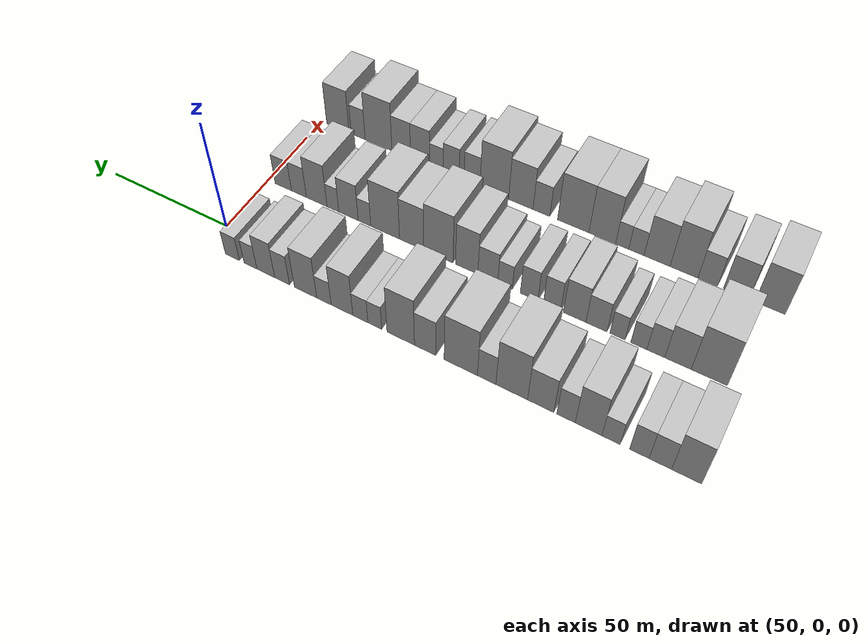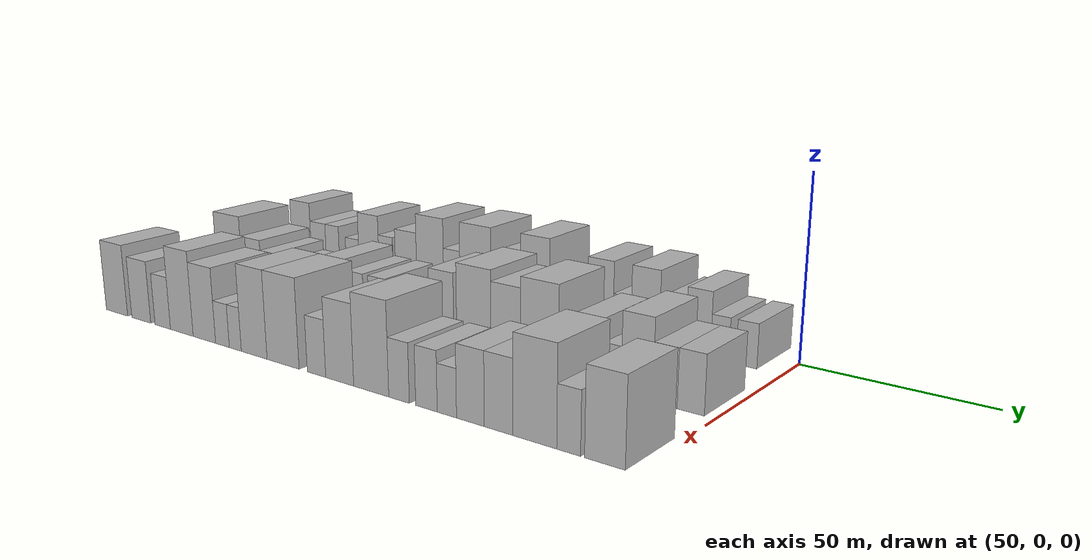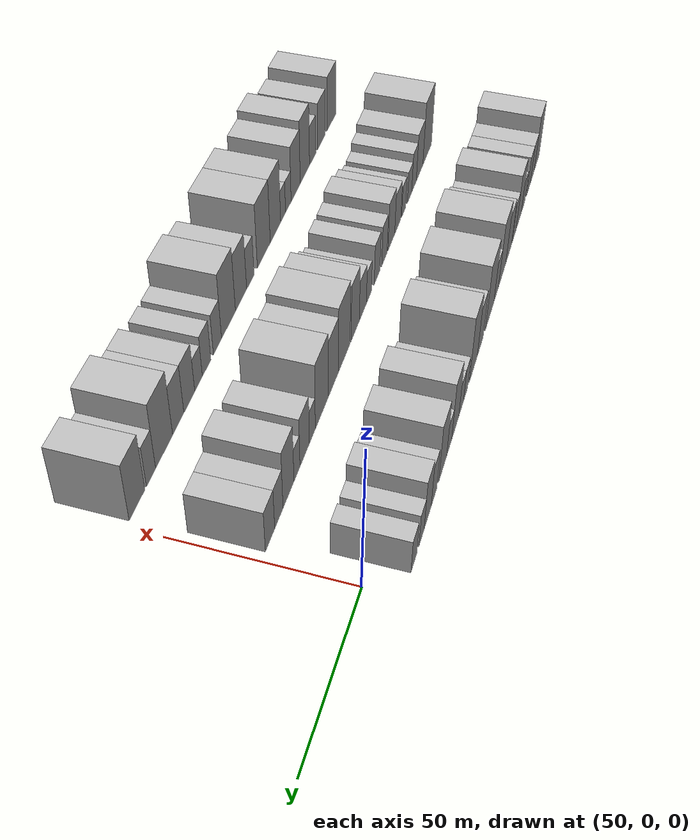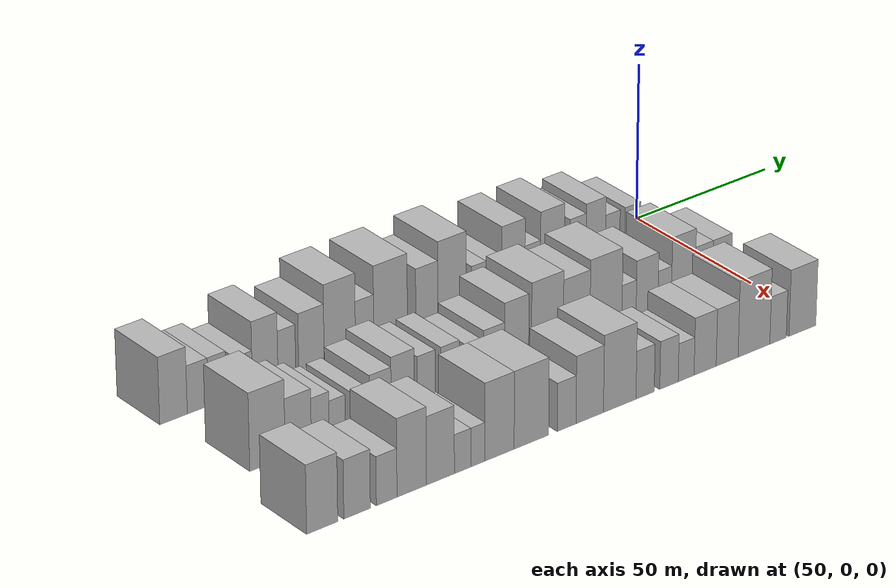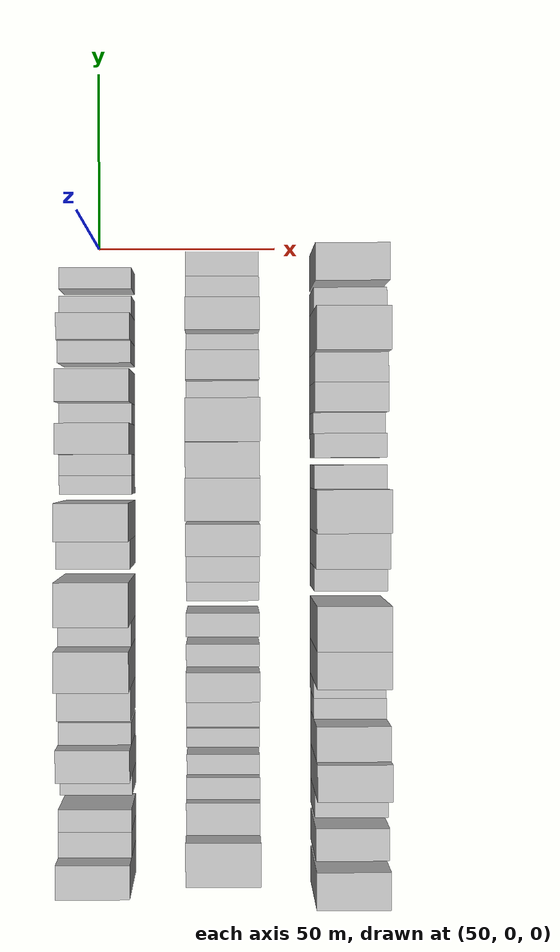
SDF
<sdf version="1.6">
 <world name="default">
  <model name="building_22">
   <static>1</static>
   <pose>50.0000 -173.2821 0 0.000000 0.000000 0.000000</pose>
   <link name="link">
    <pose>0 0 10.50 0 0 0</pose>
    <collision name="collision"><geometry><box><size>20.0000 9.2042 21.0000</size></box></geometry></collision>
    <visual name="visual">
     <cast_shadows>0</cast_shadows>
     <geometry><box><size>20.0000 9.2042 21.0000</size></box></geometry>
     <material>
      <script>
       <uri>model://HANNAS_wall/materials/scripts</uri>
       <uri>model://HANNAS_wall/materials/textures</uri>
       <name>vrc/HANNAS_wall</name>
      </script>
     </material>
    </visual>
   </link>
  </model>
  <model name="building_23">
   <static>1</static>
   <pose>50.0000 -165.1780 0 0.000000 0.000000 0.000000</pose>
   <link name="link">
    <pose>0 0 7.50 0 0 0</pose>
    <collision name="collision"><geometry><box><size>20.0000 7.0040 15.0000</size></box></geometry></collision>
    <visual name="visual">
     <cast_shadows>0</cast_shadows>
     <geometry><box><size>20.0000 7.0040 15.0000</size></box></geometry>
     <material>
      <script>
       <uri>model://HANNAS_wall/materials/scripts</uri>
       <uri>model://HANNAS_wall/materials/textures</uri>
       <name>vrc/HANNAS_wall</name>
      </script>
     </material>
    </visual>
   </link>
  </model>
  <model name="building_24">
   <static>1</static>
   <pose>50.0000 -158.6094 0 0.000000 0.000000 0.000000</pose>
   <link name="link">
    <pose>0 0 7.50 0 0 0</pose>
    <collision name="collision"><geometry><box><size>20.0000 6.1332 15.0000</size></box></geometry></collision>
    <visual name="visual">
     <cast_shadows>0</cast_shadows>
     <geometry><box><size>20.0000 6.1332 15.0000</size></box></geometry>
     <material>
      <script>
       <uri>model://HANNAS_wall/materials/scripts</uri>
       <uri>model://HANNAS_wall/materials/textures</uri>
       <name>vrc/HANNAS_wall</name>
      </script>
     </material>
    </visual>
   </link>
  </model>
  <model name="building_25">
   <static>1</static>
   <pose>50.0000 -149.6114 0 0.000000 0.000000 0.000000</pose>
   <link name="link">
    <pose>0 0 6.00 0 0 0</pose>
    <collision name="collision"><geometry><box><size>20.0000 5.8628 12.0000</size></box></geometry></collision>
    <visual name="visual">
     <cast_shadows>0</cast_shadows>
     <geometry><box><size>20.0000 5.8628 12.0000</size></box></geometry>
     <material>
      <script>
       <uri>model://HANNAS_wall/materials/scripts</uri>
       <uri>model://HANNAS_wall/materials/textures</uri>
       <name>vrc/HANNAS_wall</name>
      </script>
     </material>
    </visual>
   </link>
  </model>
  <model name="building_26">
   <static>1</static>
   <pose>50.0000 -142.3079 0 0.000000 0.000000 0.000000</pose>
   <link name="link">
    <pose>0 0 10.50 0 0 0</pose>
    <collision name="collision"><geometry><box><size>20.0000 8.7442 21.0000</size></box></geometry></collision>
    <visual name="visual">
     <cast_shadows>0</cast_shadows>
     <geometry><box><size>20.0000 8.7442 21.0000</size></box></geometry>
     <material>
      <script>
       <uri>model://HANNAS_wall/materials/scripts</uri>
       <uri>model://HANNAS_wall/materials/textures</uri>
       <name>vrc/HANNAS_wall</name>
      </script>
     </material>
    </visual>
   </link>
  </model>
  <model name="building_27">
   <static>1</static>
   <pose>50.0000 -134.8896 0 0.000000 0.000000 0.000000</pose>
   <link name="link">
    <pose>0 0 7.50 0 0 0</pose>
    <collision name="collision"><geometry><box><size>20.0000 6.0924 15.0000</size></box></geometry></collision>
    <visual name="visual">
     <cast_shadows>0</cast_shadows>
     <geometry><box><size>20.0000 6.0924 15.0000</size></box></geometry>
     <material>
      <script>
       <uri>model://HANNAS_wall/materials/scripts</uri>
       <uri>model://HANNAS_wall/materials/textures</uri>
       <name>vrc/HANNAS_wall</name>
      </script>
     </material>
    </visual>
   </link>
  </model>
  <model name="building_28">
   <static>1</static>
   <pose>50.0000 -126.4223 0 0.000000 0.000000 0.000000</pose>
   <link name="link">
    <pose>0 0 9.00 0 0 0</pose>
    <collision name="collision"><geometry><box><size>20.0000 8.8422 18.0000</size></box></geometry></collision>
    <visual name="visual">
     <cast_shadows>0</cast_shadows>
     <geometry><box><size>20.0000 8.8422 18.0000</size></box></geometry>
     <material>
      <script>
       <uri>model://HANNAS_wall/materials/scripts</uri>
       <uri>model://HANNAS_wall/materials/textures</uri>
       <name>vrc/HANNAS_wall</name>
      </script>
     </material>
    </visual>
   </link>
  </model>
  <model name="building_29">
   <static>1</static>
   <pose>50.0000 -116.5494 0 0.000000 0.000000 0.000000</pose>
   <link name="link">
    <pose>0 0 12.00 0 0 0</pose>
    <collision name="collision"><geometry><box><size>20.0000 10.9035 24.0000</size></box></geometry></collision>
    <visual name="visual">
     <cast_shadows>0</cast_shadows>
     <geometry><box><size>20.0000 10.9035 24.0000</size></box></geometry>
     <material>
      <script>
       <uri>model://HANNAS_wall/materials/scripts</uri>
       <uri>model://HANNAS_wall/materials/textures</uri>
       <name>vrc/HANNAS_wall</name>
      </script>
     </material>
    </visual>
   </link>
  </model>
  <model name="building_30">
   <static>1</static>
   <pose>50.0000 -107.8798 0 0.000000 0.000000 0.000000</pose>
   <link name="link">
    <pose>0 0 7.50 0 0 0</pose>
    <collision name="collision"><geometry><box><size>20.0000 6.4356 15.0000</size></box></geometry></collision>
    <visual name="visual">
     <cast_shadows>0</cast_shadows>
     <geometry><box><size>20.0000 6.4356 15.0000</size></box></geometry>
     <material>
      <script>
       <uri>model://HANNAS_wall/materials/scripts</uri>
       <uri>model://HANNAS_wall/materials/textures</uri>
       <name>vrc/HANNAS_wall</name>
      </script>
     </material>
    </visual>
   </link>
  </model>
  <model name="building_31">
   <static>1</static>
   <pose>50.0000 -98.7202 0 0.000000 0.000000 0.000000</pose>
   <link name="link">
    <pose>0 0 12.00 0 0 0</pose>
    <collision name="collision"><geometry><box><size>20.0000 11.8837 24.0000</size></box></geometry></collision>
    <visual name="visual">
     <cast_shadows>0</cast_shadows>
     <geometry><box><size>20.0000 11.8837 24.0000</size></box></geometry>
     <material>
      <script>
       <uri>model://HANNAS_wall/materials/scripts</uri>
       <uri>model://HANNAS_wall/materials/textures</uri>
       <name>vrc/HANNAS_wall</name>
      </script>
     </material>
    </visual>
   </link>
  </model>
  <model name="building_32">
   <static>1</static>
   <pose>50.0000 -85.8692 0 0.000000 0.000000 0.000000</pose>
   <link name="link">
    <pose>0 0 9.00 0 0 0</pose>
    <collision name="collision"><geometry><box><size>20.0000 7.8184 18.0000</size></box></geometry></collision>
    <visual name="visual">
     <cast_shadows>0</cast_shadows>
     <geometry><box><size>20.0000 7.8184 18.0000</size></box></geometry>
     <material>
      <script>
       <uri>model://HANNAS_wall/materials/scripts</uri>
       <uri>model://HANNAS_wall/materials/textures</uri>
       <name>vrc/HANNAS_wall</name>
      </script>
     </material>
    </visual>
   </link>
  </model>
  <model name="building_33">
   <static>1</static>
   <pose>50.0000 -76.8457 0 0.000000 0.000000 0.000000</pose>
   <link name="link">
    <pose>0 0 12.00 0 0 0</pose>
    <collision name="collision"><geometry><box><size>20.0000 10.2286 24.0000</size></box></geometry></collision>
    <visual name="visual">
     <cast_shadows>0</cast_shadows>
     <geometry><box><size>20.0000 10.2286 24.0000</size></box></geometry>
     <material>
      <script>
       <uri>model://HANNAS_wall/materials/scripts</uri>
       <uri>model://HANNAS_wall/materials/textures</uri>
       <name>vrc/HANNAS_wall</name>
      </script>
     </material>
    </visual>
   </link>
  </model>
  <model name="building_34">
   <static>1</static>
   <pose>50.0000 -67.1187 0 0.000000 0.000000 0.000000</pose>
   <link name="link">
    <pose>0 0 6.00 0 0 0</pose>
    <collision name="collision"><geometry><box><size>20.0000 5.2254 12.0000</size></box></geometry></collision>
    <visual name="visual">
     <cast_shadows>0</cast_shadows>
     <geometry><box><size>20.0000 5.2254 12.0000</size></box></geometry>
     <material>
      <script>
       <uri>model://HANNAS_wall/materials/scripts</uri>
       <uri>model://HANNAS_wall/materials/textures</uri>
       <name>vrc/HANNAS_wall</name>
      </script>
     </material>
    </visual>
   </link>
  </model>
  <model name="building_35">
   <static>1</static>
   <pose>50.0000 -61.6264 0 0.000000 0.000000 0.000000</pose>
   <link name="link">
    <pose>0 0 6.00 0 0 0</pose>
    <collision name="collision"><geometry><box><size>20.0000 5.7592 12.0000</size></box></geometry></collision>
    <visual name="visual">
     <cast_shadows>0</cast_shadows>
     <geometry><box><size>20.0000 5.7592 12.0000</size></box></geometry>
     <material>
      <script>
       <uri>model://HANNAS_wall/materials/scripts</uri>
       <uri>model://HANNAS_wall/materials/textures</uri>
       <name>vrc/HANNAS_wall</name>
      </script>
     </material>
    </visual>
   </link>
  </model>
  <model name="building_36">
   <static>1</static>
   <pose>50.0000 -54.5403 0 0.000000 0.000000 0.000000</pose>
   <link name="link">
    <pose>0 0 10.50 0 0 0</pose>
    <collision name="collision"><geometry><box><size>20.0000 8.4130 21.0000</size></box></geometry></collision>
    <visual name="visual">
     <cast_shadows>0</cast_shadows>
     <geometry><box><size>20.0000 8.4130 21.0000</size></box></geometry>
     <material>
      <script>
       <uri>model://HANNAS_wall/materials/scripts</uri>
       <uri>model://HANNAS_wall/materials/textures</uri>
       <name>vrc/HANNAS_wall</name>
      </script>
     </material>
    </visual>
   </link>
  </model>
  <model name="building_37">
   <static>1</static>
   <pose>50.0000 -47.4788 0 0.000000 0.000000 0.000000</pose>
   <link name="link">
    <pose>0 0 6.00 0 0 0</pose>
    <collision name="collision"><geometry><box><size>20.0000 5.7098 12.0000</size></box></geometry></collision>
    <visual name="visual">
     <cast_shadows>0</cast_shadows>
     <geometry><box><size>20.0000 5.7098 12.0000</size></box></geometry>
     <material>
      <script>
       <uri>model://HANNAS_wall/materials/scripts</uri>
       <uri>model://HANNAS_wall/materials/textures</uri>
       <name>vrc/HANNAS_wall</name>
      </script>
     </material>
    </visual>
   </link>
  </model>
  <model name="building_38">
   <static>1</static>
   <pose>50.0000 -40.1824 0 0.000000 0.000000 0.000000</pose>
   <link name="link">
    <pose>0 0 10.50 0 0 0</pose>
    <collision name="collision"><geometry><box><size>20.0000 8.8831 21.0000</size></box></geometry></collision>
    <visual name="visual">
     <cast_shadows>0</cast_shadows>
     <geometry><box><size>20.0000 8.8831 21.0000</size></box></geometry>
     <material>
      <script>
       <uri>model://HANNAS_wall/materials/scripts</uri>
       <uri>model://HANNAS_wall/materials/textures</uri>
       <name>vrc/HANNAS_wall</name>
      </script>
     </material>
    </visual>
   </link>
  </model>
  <model name="building_39">
   <static>1</static>
   <pose>50.0000 -30.7308 0 0.000000 0.000000 0.000000</pose>
   <link name="link">
    <pose>0 0 7.50 0 0 0</pose>
    <collision name="collision"><geometry><box><size>20.0000 6.0201 15.0000</size></box></geometry></collision>
    <visual name="visual">
     <cast_shadows>0</cast_shadows>
     <geometry><box><size>20.0000 6.0201 15.0000</size></box></geometry>
     <material>
      <script>
       <uri>model://HANNAS_wall/materials/scripts</uri>
       <uri>model://HANNAS_wall/materials/textures</uri>
       <name>vrc/HANNAS_wall</name>
      </script>
     </material>
    </visual>
   </link>
  </model>
  <model name="building_40">
   <static>1</static>
   <pose>50.0000 -24.0567 0 0.000000 0.000000 0.000000</pose>
   <link name="link">
    <pose>0 0 9.00 0 0 0</pose>
    <collision name="collision"><geometry><box><size>20.0000 7.3281 18.0000</size></box></geometry></collision>
    <visual name="visual">
     <cast_shadows>0</cast_shadows>
     <geometry><box><size>20.0000 7.3281 18.0000</size></box></geometry>
     <material>
      <script>
       <uri>model://HANNAS_wall/materials/scripts</uri>
       <uri>model://HANNAS_wall/materials/textures</uri>
       <name>vrc/HANNAS_wall</name>
      </script>
     </material>
    </visual>
   </link>
  </model>
  <model name="building_41">
   <static>1</static>
   <pose>50.0000 -17.7260 0 0.000000 0.000000 0.000000</pose>
   <link name="link">
    <pose>0 0 6.00 0 0 0</pose>
    <collision name="collision"><geometry><box><size>20.0000 5.3332 12.0000</size></box></geometry></collision>
    <visual name="visual">
     <cast_shadows>0</cast_shadows>
     <geometry><box><size>20.0000 5.3332 12.0000</size></box></geometry>
     <material>
      <script>
       <uri>model://HANNAS_wall/materials/scripts</uri>
       <uri>model://HANNAS_wall/materials/textures</uri>
       <name>vrc/HANNAS_wall</name>
      </script>
     </material>
    </visual>
   </link>
  </model>
  <model name="building_42">
   <static>1</static>
   <pose>50.0000 -10.1235 0 0.000000 0.000000 0.000000</pose>
   <link name="link">
    <pose>0 0 6.00 0 0 0</pose>
    <collision name="collision"><geometry><box><size>20.0000 5.8719 12.0000</size></box></geometry></collision>
    <visual name="visual">
     <cast_shadows>0</cast_shadows>
     <geometry><box><size>20.0000 5.8719 12.0000</size></box></geometry>
     <material>
      <script>
       <uri>model://HANNAS_wall/materials/scripts</uri>
       <uri>model://HANNAS_wall/materials/textures</uri>
       <name>vrc/HANNAS_wall</name>
      </script>
     </material>
    </visual>
   </link>
  </model>
  <model name="building_107">
   <static>1</static>
   <pose>85.0000 -167.5696 0 0.000000 0.000000 0.000000</pose>
   <link name="link">
    <pose>0 0 12.00 0 0 0</pose>
    <collision name="collision"><geometry><box><size>20.0000 11.8075 24.0000</size></box></geometry></collision>
    <visual name="visual">
     <cast_shadows>0</cast_shadows>
     <geometry><box><size>20.0000 11.8075 24.0000</size></box></geometry>
     <material>
      <script>
       <uri>model://HANNAS_wall/materials/scripts</uri>
       <uri>model://HANNAS_wall/materials/textures</uri>
       <name>vrc/HANNAS_wall</name>
      </script>
     </material>
    </visual>
   </link>
  </model>
  <model name="building_108">
   <static>1</static>
   <pose>85.0000 -157.2878 0 0.000000 0.000000 0.000000</pose>
   <link name="link">
    <pose>0 0 9.00 0 0 0</pose>
    <collision name="collision"><geometry><box><size>20.0000 8.7562 18.0000</size></box></geometry></collision>
    <visual name="visual">
     <cast_shadows>0</cast_shadows>
     <geometry><box><size>20.0000 8.7562 18.0000</size></box></geometry>
     <material>
      <script>
       <uri>model://HANNAS_wall/materials/scripts</uri>
       <uri>model://HANNAS_wall/materials/textures</uri>
       <name>vrc/HANNAS_wall</name>
      </script>
     </material>
    </visual>
   </link>
  </model>
  <model name="building_109">
   <static>1</static>
   <pose>85.0000 -149.8974 0 0.000000 0.000000 0.000000</pose>
   <link name="link">
    <pose>0 0 7.50 0 0 0</pose>
    <collision name="collision"><geometry><box><size>20.0000 6.0246 15.0000</size></box></geometry></collision>
    <visual name="visual">
     <cast_shadows>0</cast_shadows>
     <geometry><box><size>20.0000 6.0246 15.0000</size></box></geometry>
     <material>
      <script>
       <uri>model://HANNAS_wall/materials/scripts</uri>
       <uri>model://HANNAS_wall/materials/textures</uri>
       <name>vrc/HANNAS_wall</name>
      </script>
     </material>
    </visual>
   </link>
  </model>
  <model name="building_110">
   <static>1</static>
   <pose>85.0000 -144.1345 0 0.000000 0.000000 0.000000</pose>
   <link name="link">
    <pose>0 0 6.00 0 0 0</pose>
    <collision name="collision"><geometry><box><size>20.0000 5.5012 12.0000</size></box></geometry></collision>
    <visual name="visual">
     <cast_shadows>0</cast_shadows>
     <geometry><box><size>20.0000 5.5012 12.0000</size></box></geometry>
     <material>
      <script>
       <uri>model://HANNAS_wall/materials/scripts</uri>
       <uri>model://HANNAS_wall/materials/textures</uri>
       <name>vrc/HANNAS_wall</name>
      </script>
     </material>
    </visual>
   </link>
  </model>
  <model name="building_111">
   <static>1</static>
   <pose>85.0000 -136.7730 0 0.000000 0.000000 0.000000</pose>
   <link name="link">
    <pose>0 0 6.00 0 0 0</pose>
    <collision name="collision"><geometry><box><size>20.0000 5.2218 12.0000</size></box></geometry></collision>
    <visual name="visual">
     <cast_shadows>0</cast_shadows>
     <geometry><box><size>20.0000 5.2218 12.0000</size></box></geometry>
     <material>
      <script>
       <uri>model://HANNAS_wall/materials/scripts</uri>
       <uri>model://HANNAS_wall/materials/textures</uri>
       <name>vrc/HANNAS_wall</name>
      </script>
     </material>
    </visual>
   </link>
  </model>
  <model name="building_112">
   <static>1</static>
   <pose>85.0000 -129.4617 0 0.000000 0.000000 0.000000</pose>
   <link name="link">
    <pose>0 0 7.50 0 0 0</pose>
    <collision name="collision"><geometry><box><size>20.0000 7.4008 15.0000</size></box></geometry></collision>
    <visual name="visual">
     <cast_shadows>0</cast_shadows>
     <geometry><box><size>20.0000 7.4008 15.0000</size></box></geometry>
     <material>
      <script>
       <uri>model://HANNAS_wall/materials/scripts</uri>
       <uri>model://HANNAS_wall/materials/textures</uri>
       <name>vrc/HANNAS_wall</name>
      </script>
     </material>
    </visual>
   </link>
  </model>
  <model name="building_113">
   <static>1</static>
   <pose>85.0000 -121.7419 0 0.000000 0.000000 0.000000</pose>
   <link name="link">
    <pose>0 0 9.00 0 0 0</pose>
    <collision name="collision"><geometry><box><size>20.0000 8.0388 18.0000</size></box></geometry></collision>
    <visual name="visual">
     <cast_shadows>0</cast_shadows>
     <geometry><box><size>20.0000 8.0388 18.0000</size></box></geometry>
     <material>
      <script>
       <uri>model://HANNAS_wall/materials/scripts</uri>
       <uri>model://HANNAS_wall/materials/textures</uri>
       <name>vrc/HANNAS_wall</name>
      </script>
     </material>
    </visual>
   </link>
  </model>
  <model name="building_114">
   <static>1</static>
   <pose>85.0000 -113.6129 0 0.000000 0.000000 0.000000</pose>
   <link name="link">
    <pose>0 0 7.50 0 0 0</pose>
    <collision name="collision"><geometry><box><size>20.0000 6.2191 15.0000</size></box></geometry></collision>
    <visual name="visual">
     <cast_shadows>0</cast_shadows>
     <geometry><box><size>20.0000 6.2191 15.0000</size></box></geometry>
     <material>
      <script>
       <uri>model://HANNAS_wall/materials/scripts</uri>
       <uri>model://HANNAS_wall/materials/textures</uri>
       <name>vrc/HANNAS_wall</name>
      </script>
     </material>
    </visual>
   </link>
  </model>
  <model name="building_115">
   <static>1</static>
   <pose>85.0000 -105.2906 0 0.000000 0.000000 0.000000</pose>
   <link name="link">
    <pose>0 0 7.50 0 0 0</pose>
    <collision name="collision"><geometry><box><size>20.0000 6.4255 15.0000</size></box></geometry></collision>
    <visual name="visual">
     <cast_shadows>0</cast_shadows>
     <geometry><box><size>20.0000 6.4255 15.0000</size></box></geometry>
     <material>
      <script>
       <uri>model://HANNAS_wall/materials/scripts</uri>
       <uri>model://HANNAS_wall/materials/textures</uri>
       <name>vrc/HANNAS_wall</name>
      </script>
     </material>
    </visual>
   </link>
  </model>
  <model name="building_116">
   <static>1</static>
   <pose>85.0000 -96.3567 0 0.000000 0.000000 0.000000</pose>
   <link name="link">
    <pose>0 0 6.00 0 0 0</pose>
    <collision name="collision"><geometry><box><size>20.0000 5.4422 12.0000</size></box></geometry></collision>
    <visual name="visual">
     <cast_shadows>0</cast_shadows>
     <geometry><box><size>20.0000 5.4422 12.0000</size></box></geometry>
     <material>
      <script>
       <uri>model://HANNAS_wall/materials/scripts</uri>
       <uri>model://HANNAS_wall/materials/textures</uri>
       <name>vrc/HANNAS_wall</name>
      </script>
     </material>
    </visual>
   </link>
  </model>
  <model name="building_117">
   <static>1</static>
   <pose>85.0000 -89.8879 0 0.000000 0.000000 0.000000</pose>
   <link name="link">
    <pose>0 0 7.50 0 0 0</pose>
    <collision name="collision"><geometry><box><size>20.0000 7.4953 15.0000</size></box></geometry></collision>
    <visual name="visual">
     <cast_shadows>0</cast_shadows>
     <geometry><box><size>20.0000 7.4953 15.0000</size></box></geometry>
     <material>
      <script>
       <uri>model://HANNAS_wall/materials/scripts</uri>
       <uri>model://HANNAS_wall/materials/textures</uri>
       <name>vrc/HANNAS_wall</name>
      </script>
     </material>
    </visual>
   </link>
  </model>
  <model name="building_118">
   <static>1</static>
   <pose>85.0000 -81.8566 0 0.000000 0.000000 0.000000</pose>
   <link name="link">
    <pose>0 0 10.50 0 0 0</pose>
    <collision name="collision"><geometry><box><size>20.0000 8.5673 21.0000</size></box></geometry></collision>
    <visual name="visual">
     <cast_shadows>0</cast_shadows>
     <geometry><box><size>20.0000 8.5673 21.0000</size></box></geometry>
     <material>
      <script>
       <uri>model://HANNAS_wall/materials/scripts</uri>
       <uri>model://HANNAS_wall/materials/textures</uri>
       <name>vrc/HANNAS_wall</name>
      </script>
     </material>
    </visual>
   </link>
  </model>
  <model name="building_119">
   <static>1</static>
   <pose>85.0000 -70.8577 0 0.000000 0.000000 0.000000</pose>
   <link name="link">
    <pose>0 0 12.00 0 0 0</pose>
    <collision name="collision"><geometry><box><size>20.0000 11.4305 24.0000</size></box></geometry></collision>
    <visual name="visual">
     <cast_shadows>0</cast_shadows>
     <geometry><box><size>20.0000 11.4305 24.0000</size></box></geometry>
     <material>
      <script>
       <uri>model://HANNAS_wall/materials/scripts</uri>
       <uri>model://HANNAS_wall/materials/textures</uri>
       <name>vrc/HANNAS_wall</name>
      </script>
     </material>
    </visual>
   </link>
  </model>
  <model name="building_120">
   <static>1</static>
   <pose>85.0000 -60.3162 0 0.000000 0.000000 0.000000</pose>
   <link name="link">
    <pose>0 0 10.50 0 0 0</pose>
    <collision name="collision"><geometry><box><size>20.0000 9.6524 21.0000</size></box></geometry></collision>
    <visual name="visual">
     <cast_shadows>0</cast_shadows>
     <geometry><box><size>20.0000 9.6524 21.0000</size></box></geometry>
     <material>
      <script>
       <uri>model://HANNAS_wall/materials/scripts</uri>
       <uri>model://HANNAS_wall/materials/textures</uri>
       <name>vrc/HANNAS_wall</name>
      </script>
     </material>
    </visual>
   </link>
  </model>
  <model name="building_121">
   <static>1</static>
   <pose>85.0000 -49.6413 0 0.000000 0.000000 0.000000</pose>
   <link name="link">
    <pose>0 0 12.00 0 0 0</pose>
    <collision name="collision"><geometry><box><size>20.0000 11.6974 24.0000</size></box></geometry></collision>
    <visual name="visual">
     <cast_shadows>0</cast_shadows>
     <geometry><box><size>20.0000 11.6974 24.0000</size></box></geometry>
     <material>
      <script>
       <uri>model://HANNAS_wall/materials/scripts</uri>
       <uri>model://HANNAS_wall/materials/textures</uri>
       <name>vrc/HANNAS_wall</name>
      </script>
     </material>
    </visual>
   </link>
  </model>
  <model name="building_122">
   <static>1</static>
   <pose>85.0000 -41.1798 0 0.000000 0.000000 0.000000</pose>
   <link name="link">
    <pose>0 0 6.00 0 0 0</pose>
    <collision name="collision"><geometry><box><size>20.0000 5.2256 12.0000</size></box></geometry></collision>
    <visual name="visual">
     <cast_shadows>0</cast_shadows>
     <geometry><box><size>20.0000 5.2256 12.0000</size></box></geometry>
     <material>
      <script>
       <uri>model://HANNAS_wall/materials/scripts</uri>
       <uri>model://HANNAS_wall/materials/textures</uri>
       <name>vrc/HANNAS_wall</name>
      </script>
     </material>
    </visual>
   </link>
  </model>
  <model name="building_123">
   <static>1</static>
   <pose>85.0000 -34.5429 0 0.000000 0.000000 0.000000</pose>
   <link name="link">
    <pose>0 0 9.00 0 0 0</pose>
    <collision name="collision"><geometry><box><size>20.0000 8.0482 18.0000</size></box></geometry></collision>
    <visual name="visual">
     <cast_shadows>0</cast_shadows>
     <geometry><box><size>20.0000 8.0482 18.0000</size></box></geometry>
     <material>
      <script>
       <uri>model://HANNAS_wall/materials/scripts</uri>
       <uri>model://HANNAS_wall/materials/textures</uri>
       <name>vrc/HANNAS_wall</name>
      </script>
     </material>
    </visual>
   </link>
  </model>
  <model name="building_124">
   <static>1</static>
   <pose>85.0000 -28.0223 0 0.000000 0.000000 0.000000</pose>
   <link name="link">
    <pose>0 0 6.00 0 0 0</pose>
    <collision name="collision"><geometry><box><size>20.0000 4.9931 12.0000</size></box></geometry></collision>
    <visual name="visual">
     <cast_shadows>0</cast_shadows>
     <geometry><box><size>20.0000 4.9931 12.0000</size></box></geometry>
     <material>
      <script>
       <uri>model://HANNAS_wall/materials/scripts</uri>
       <uri>model://HANNAS_wall/materials/textures</uri>
       <name>vrc/HANNAS_wall</name>
      </script>
     </material>
    </visual>
   </link>
  </model>
  <model name="building_125">
   <static>1</static>
   <pose>85.0000 -21.1057 0 0.000000 0.000000 0.000000</pose>
   <link name="link">
    <pose>0 0 10.50 0 0 0</pose>
    <collision name="collision"><geometry><box><size>20.0000 8.8401 21.0000</size></box></geometry></collision>
    <visual name="visual">
     <cast_shadows>0</cast_shadows>
     <geometry><box><size>20.0000 8.8401 21.0000</size></box></geometry>
     <material>
      <script>
       <uri>model://HANNAS_wall/materials/scripts</uri>
       <uri>model://HANNAS_wall/materials/textures</uri>
       <name>vrc/HANNAS_wall</name>
      </script>
     </material>
    </visual>
   </link>
  </model>
  <model name="building_126">
   <static>1</static>
   <pose>85.0000 -13.4276 0 0.000000 0.000000 0.000000</pose>
   <link name="link">
    <pose>0 0 7.50 0 0 0</pose>
    <collision name="collision"><geometry><box><size>20.0000 6.5160 15.0000</size></box></geometry></collision>
    <visual name="visual">
     <cast_shadows>0</cast_shadows>
     <geometry><box><size>20.0000 6.5160 15.0000</size></box></geometry>
     <material>
      <script>
       <uri>model://HANNAS_wall/materials/scripts</uri>
       <uri>model://HANNAS_wall/materials/textures</uri>
       <name>vrc/HANNAS_wall</name>
      </script>
     </material>
    </visual>
   </link>
  </model>
  <model name="building_127">
   <static>1</static>
   <pose>85.0000 -6.6110 0 0.000000 0.000000 0.000000</pose>
   <link name="link">
    <pose>0 0 7.50 0 0 0</pose>
    <collision name="collision"><geometry><box><size>20.0000 7.1174 15.0000</size></box></geometry></collision>
    <visual name="visual">
     <cast_shadows>0</cast_shadows>
     <geometry><box><size>20.0000 7.1174 15.0000</size></box></geometry>
     <material>
      <script>
       <uri>model://HANNAS_wall/materials/scripts</uri>
       <uri>model://HANNAS_wall/materials/textures</uri>
       <name>vrc/HANNAS_wall</name>
      </script>
     </material>
    </visual>
   </link>
  </model>
  <model name="building_184">
   <static>1</static>
   <pose>120.0000 -175.8247 0 0.000000 0.000000 0.000000</pose>
   <link name="link">
    <pose>0 0 10.50 0 0 0</pose>
    <collision name="collision"><geometry><box><size>20.0000 10.2120 21.0000</size></box></geometry></collision>
    <visual name="visual">
     <cast_shadows>0</cast_shadows>
     <geometry><box><size>20.0000 10.2120 21.0000</size></box></geometry>
     <material>
      <script>
       <uri>model://HANNAS_wall/materials/scripts</uri>
       <uri>model://HANNAS_wall/materials/textures</uri>
       <name>vrc/HANNAS_wall</name>
      </script>
     </material>
    </visual>
   </link>
  </model>
  <model name="building_185">
   <static>1</static>
   <pose>120.0000 -164.3295 0 0.000000 0.000000 0.000000</pose>
   <link name="link">
    <pose>0 0 9.00 0 0 0</pose>
    <collision name="collision"><geometry><box><size>20.0000 8.7785 18.0000</size></box></geometry></collision>
    <visual name="visual">
     <cast_shadows>0</cast_shadows>
     <geometry><box><size>20.0000 8.7785 18.0000</size></box></geometry>
     <material>
      <script>
       <uri>model://HANNAS_wall/materials/scripts</uri>
       <uri>model://HANNAS_wall/materials/textures</uri>
       <name>vrc/HANNAS_wall</name>
      </script>
     </material>
    </visual>
   </link>
  </model>
  <model name="building_186">
   <static>1</static>
   <pose>120.0000 -154.4881 0 0.000000 0.000000 0.000000</pose>
   <link name="link">
    <pose>0 0 7.50 0 0 0</pose>
    <collision name="collision"><geometry><box><size>20.0000 6.9041 15.0000</size></box></geometry></collision>
    <visual name="visual">
     <cast_shadows>0</cast_shadows>
     <geometry><box><size>20.0000 6.9041 15.0000</size></box></geometry>
     <material>
      <script>
       <uri>model://HANNAS_wall/materials/scripts</uri>
       <uri>model://HANNAS_wall/materials/textures</uri>
       <name>vrc/HANNAS_wall</name>
      </script>
     </material>
    </visual>
   </link>
  </model>
  <model name="building_187">
   <static>1</static>
   <pose>120.0000 -146.0842 0 0.000000 0.000000 0.000000</pose>
   <link name="link">
    <pose>0 0 12.00 0 0 0</pose>
    <collision name="collision"><geometry><box><size>20.0000 9.9036 24.0000</size></box></geometry></collision>
    <visual name="visual">
     <cast_shadows>0</cast_shadows>
     <geometry><box><size>20.0000 9.9036 24.0000</size></box></geometry>
     <material>
      <script>
       <uri>model://HANNAS_wall/materials/scripts</uri>
       <uri>model://HANNAS_wall/materials/textures</uri>
       <name>vrc/HANNAS_wall</name>
      </script>
     </material>
    </visual>
   </link>
  </model>
  <model name="building_188">
   <static>1</static>
   <pose>120.0000 -136.4127 0 0.000000 0.000000 0.000000</pose>
   <link name="link">
    <pose>0 0 10.50 0 0 0</pose>
    <collision name="collision"><geometry><box><size>20.0000 9.4394 21.0000</size></box></geometry></collision>
    <visual name="visual">
     <cast_shadows>0</cast_shadows>
     <geometry><box><size>20.0000 9.4394 21.0000</size></box></geometry>
     <material>
      <script>
       <uri>model://HANNAS_wall/materials/scripts</uri>
       <uri>model://HANNAS_wall/materials/textures</uri>
       <name>vrc/HANNAS_wall</name>
      </script>
     </material>
    </visual>
   </link>
  </model>
  <model name="building_189">
   <static>1</static>
   <pose>120.0000 -128.8853 0 0.000000 0.000000 0.000000</pose>
   <link name="link">
    <pose>0 0 6.00 0 0 0</pose>
    <collision name="collision"><geometry><box><size>20.0000 5.6155 12.0000</size></box></geometry></collision>
    <visual name="visual">
     <cast_shadows>0</cast_shadows>
     <geometry><box><size>20.0000 5.6155 12.0000</size></box></geometry>
     <material>
      <script>
       <uri>model://HANNAS_wall/materials/scripts</uri>
       <uri>model://HANNAS_wall/materials/textures</uri>
       <name>vrc/HANNAS_wall</name>
      </script>
     </material>
    </visual>
   </link>
  </model>
  <model name="building_190">
   <static>1</static>
   <pose>120.0000 -123.6623 0 0.000000 0.000000 0.000000</pose>
   <link name="link">
    <pose>0 0 6.00 0 0 0</pose>
    <collision name="collision"><geometry><box><size>20.0000 4.8306 12.0000</size></box></geometry></collision>
    <visual name="visual">
     <cast_shadows>0</cast_shadows>
     <geometry><box><size>20.0000 4.8306 12.0000</size></box></geometry>
     <material>
      <script>
       <uri>model://HANNAS_wall/materials/scripts</uri>
       <uri>model://HANNAS_wall/materials/textures</uri>
       <name>vrc/HANNAS_wall</name>
      </script>
     </material>
    </visual>
   </link>
  </model>
  <model name="building_191">
   <static>1</static>
   <pose>120.0000 -116.2233 0 0.000000 0.000000 0.000000</pose>
   <link name="link">
    <pose>0 0 12.00 0 0 0</pose>
    <collision name="collision"><geometry><box><size>20.0000 10.0475 24.0000</size></box></geometry></collision>
    <visual name="visual">
     <cast_shadows>0</cast_shadows>
     <geometry><box><size>20.0000 10.0475 24.0000</size></box></geometry>
     <material>
      <script>
       <uri>model://HANNAS_wall/materials/scripts</uri>
       <uri>model://HANNAS_wall/materials/textures</uri>
       <name>vrc/HANNAS_wall</name>
      </script>
     </material>
    </visual>
   </link>
  </model>
  <model name="building_192">
   <static>1</static>
   <pose>120.0000 -105.1996 0 0.000000 0.000000 0.000000</pose>
   <link name="link">
    <pose>0 0 12.00 0 0 0</pose>
    <collision name="collision"><geometry><box><size>20.0000 11.9999 24.0000</size></box></geometry></collision>
    <visual name="visual">
     <cast_shadows>0</cast_shadows>
     <geometry><box><size>20.0000 11.9999 24.0000</size></box></geometry>
     <material>
      <script>
       <uri>model://HANNAS_wall/materials/scripts</uri>
       <uri>model://HANNAS_wall/materials/textures</uri>
       <name>vrc/HANNAS_wall</name>
      </script>
     </material>
    </visual>
   </link>
  </model>
  <model name="building_193">
   <static>1</static>
   <pose>120.0000 -92.9082 0 0.000000 0.000000 0.000000</pose>
   <link name="link">
    <pose>0 0 7.50 0 0 0</pose>
    <collision name="collision"><geometry><box><size>20.0000 6.5828 15.0000</size></box></geometry></collision>
    <visual name="visual">
     <cast_shadows>0</cast_shadows>
     <geometry><box><size>20.0000 6.5828 15.0000</size></box></geometry>
     <material>
      <script>
       <uri>model://HANNAS_wall/materials/scripts</uri>
       <uri>model://HANNAS_wall/materials/textures</uri>
       <name>vrc/HANNAS_wall</name>
      </script>
     </material>
    </visual>
   </link>
  </model>
  <model name="building_194">
   <static>1</static>
   <pose>120.0000 -84.7706 0 0.000000 0.000000 0.000000</pose>
   <link name="link">
    <pose>0 0 10.50 0 0 0</pose>
    <collision name="collision"><geometry><box><size>20.0000 9.6925 21.0000</size></box></geometry></collision>
    <visual name="visual">
     <cast_shadows>0</cast_shadows>
     <geometry><box><size>20.0000 9.6925 21.0000</size></box></geometry>
     <material>
      <script>
       <uri>model://HANNAS_wall/materials/scripts</uri>
       <uri>model://HANNAS_wall/materials/textures</uri>
       <name>vrc/HANNAS_wall</name>
      </script>
     </material>
    </visual>
   </link>
  </model>
  <model name="building_195">
   <static>1</static>
   <pose>120.0000 -74.1231 0 0.000000 0.000000 0.000000</pose>
   <link name="link">
    <pose>0 0 12.00 0 0 0</pose>
    <collision name="collision"><geometry><box><size>20.0000 11.6027 24.0000</size></box></geometry></collision>
    <visual name="visual">
     <cast_shadows>0</cast_shadows>
     <geometry><box><size>20.0000 11.6027 24.0000</size></box></geometry>
     <material>
      <script>
       <uri>model://HANNAS_wall/materials/scripts</uri>
       <uri>model://HANNAS_wall/materials/textures</uri>
       <name>vrc/HANNAS_wall</name>
      </script>
     </material>
    </visual>
   </link>
  </model>
  <model name="building_196">
   <static>1</static>
   <pose>120.0000 -65.0435 0 0.000000 0.000000 0.000000</pose>
   <link name="link">
    <pose>0 0 7.50 0 0 0</pose>
    <collision name="collision"><geometry><box><size>20.0000 6.5564 15.0000</size></box></geometry></collision>
    <visual name="visual">
     <cast_shadows>0</cast_shadows>
     <geometry><box><size>20.0000 6.5564 15.0000</size></box></geometry>
     <material>
      <script>
       <uri>model://HANNAS_wall/materials/scripts</uri>
       <uri>model://HANNAS_wall/materials/textures</uri>
       <name>vrc/HANNAS_wall</name>
      </script>
     </material>
    </visual>
   </link>
  </model>
  <model name="building_197">
   <static>1</static>
   <pose>120.0000 -56.4449 0 0.000000 0.000000 0.000000</pose>
   <link name="link">
    <pose>0 0 7.50 0 0 0</pose>
    <collision name="collision"><geometry><box><size>20.0000 6.6409 15.0000</size></box></geometry></collision>
    <visual name="visual">
     <cast_shadows>0</cast_shadows>
     <geometry><box><size>20.0000 6.6409 15.0000</size></box></geometry>
     <material>
      <script>
       <uri>model://HANNAS_wall/materials/scripts</uri>
       <uri>model://HANNAS_wall/materials/textures</uri>
       <name>vrc/HANNAS_wall</name>
      </script>
     </material>
    </visual>
   </link>
  </model>
  <model name="building_198">
   <static>1</static>
   <pose>120.0000 -50.2385 0 0.000000 0.000000 0.000000</pose>
   <link name="link">
    <pose>0 0 6.00 0 0 0</pose>
    <collision name="collision"><geometry><box><size>20.0000 5.7718 12.0000</size></box></geometry></collision>
    <visual name="visual">
     <cast_shadows>0</cast_shadows>
     <geometry><box><size>20.0000 5.7718 12.0000</size></box></geometry>
     <material>
      <script>
       <uri>model://HANNAS_wall/materials/scripts</uri>
       <uri>model://HANNAS_wall/materials/textures</uri>
       <name>vrc/HANNAS_wall</name>
      </script>
     </material>
    </visual>
   </link>
  </model>
  <model name="building_199">
   <static>1</static>
   <pose>120.0000 -43.3156 0 0.000000 0.000000 0.000000</pose>
   <link name="link">
    <pose>0 0 9.00 0 0 0</pose>
    <collision name="collision"><geometry><box><size>20.0000 8.0741 18.0000</size></box></geometry></collision>
    <visual name="visual">
     <cast_shadows>0</cast_shadows>
     <geometry><box><size>20.0000 8.0741 18.0000</size></box></geometry>
     <material>
      <script>
       <uri>model://HANNAS_wall/materials/scripts</uri>
       <uri>model://HANNAS_wall/materials/textures</uri>
       <name>vrc/HANNAS_wall</name>
      </script>
     </material>
    </visual>
   </link>
  </model>
  <model name="building_200">
   <static>1</static>
   <pose>120.0000 -35.2497 0 0.000000 0.000000 0.000000</pose>
   <link name="link">
    <pose>0 0 9.00 0 0 0</pose>
    <collision name="collision"><geometry><box><size>20.0000 8.0576 18.0000</size></box></geometry></collision>
    <visual name="visual">
     <cast_shadows>0</cast_shadows>
     <geometry><box><size>20.0000 8.0576 18.0000</size></box></geometry>
     <material>
      <script>
       <uri>model://HANNAS_wall/materials/scripts</uri>
       <uri>model://HANNAS_wall/materials/textures</uri>
       <name>vrc/HANNAS_wall</name>
      </script>
     </material>
    </visual>
   </link>
  </model>
  <model name="building_201">
   <static>1</static>
   <pose>120.0000 -25.3437 0 0.000000 0.000000 0.000000</pose>
   <link name="link">
    <pose>0 0 12.00 0 0 0</pose>
    <collision name="collision"><geometry><box><size>20.0000 11.7546 24.0000</size></box></geometry></collision>
    <visual name="visual">
     <cast_shadows>0</cast_shadows>
     <geometry><box><size>20.0000 11.7546 24.0000</size></box></geometry>
     <material>
      <script>
       <uri>model://HANNAS_wall/materials/scripts</uri>
       <uri>model://HANNAS_wall/materials/textures</uri>
       <name>vrc/HANNAS_wall</name>
      </script>
     </material>
    </visual>
   </link>
  </model>
  <model name="building_202">
   <static>1</static>
   <pose>120.0000 -16.3899 0 0.000000 0.000000 0.000000</pose>
   <link name="link">
    <pose>0 0 7.50 0 0 0</pose>
    <collision name="collision"><geometry><box><size>20.0000 6.1529 15.0000</size></box></geometry></collision>
    <visual name="visual">
     <cast_shadows>0</cast_shadows>
     <geometry><box><size>20.0000 6.1529 15.0000</size></box></geometry>
     <material>
      <script>
       <uri>model://HANNAS_wall/materials/scripts</uri>
       <uri>model://HANNAS_wall/materials/textures</uri>
       <name>vrc/HANNAS_wall</name>
      </script>
     </material>
    </visual>
   </link>
  </model>
  <model name="building_203">
   <static>1</static>
   <pose>120.0000 -7.2737 0 0.000000 0.000000 0.000000</pose>
   <link name="link">
    <pose>0 0 10.50 0 0 0</pose>
    <collision name="collision"><geometry><box><size>20.0000 10.0797 21.0000</size></box></geometry></collision>
    <visual name="visual">
     <cast_shadows>0</cast_shadows>
     <geometry><box><size>20.0000 10.0797 21.0000</size></box></geometry>
     <material>
      <script>
       <uri>model://HANNAS_wall/materials/scripts</uri>
       <uri>model://HANNAS_wall/materials/textures</uri>
       <name>vrc/HANNAS_wall</name>
      </script>
     </material>
    </visual>
   </link>
  </model>
 </world>
</sdf>
